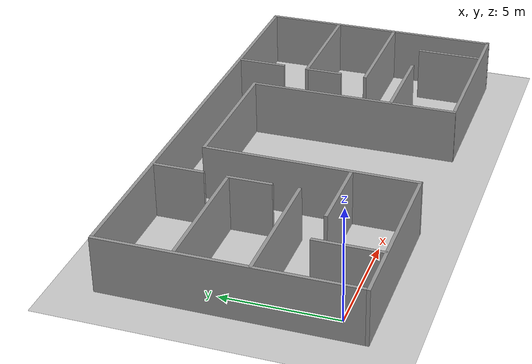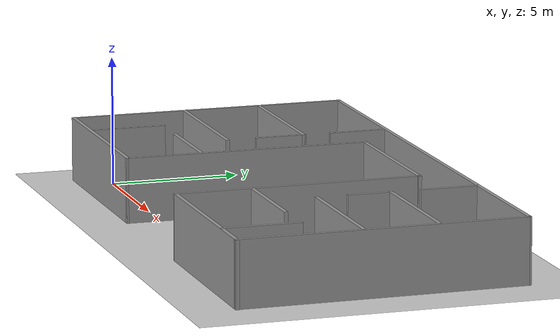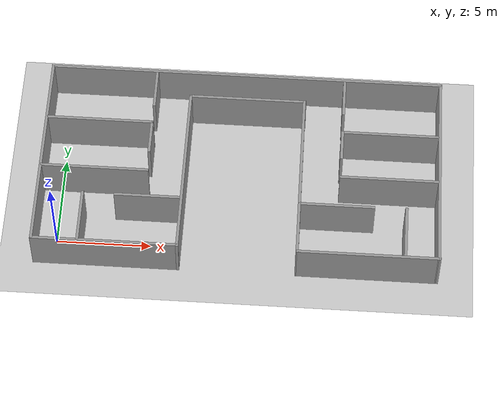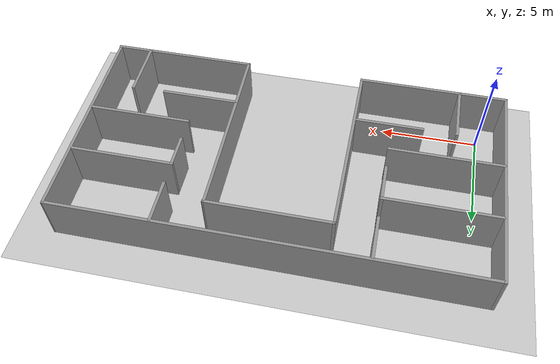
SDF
<sdf version="1.7">
 <world name="default">
  <light name="sun" type="directional">
   <pose>0 0 10 0 -0 0</pose>
   <diffuse>0.8 0.8 0.8 1</diffuse>
   <specular>0.2 0.2 0.2 1</specular>
   <attenuation>
    <range>1000</range>
    <constant>0.9</constant>
    <linear>0.01</linear>
    <quadratic>0.001</quadratic>
   </attenuation>
   <direction>-0.5 0.1 -0.9</direction>
   <spot><inner_angle>0</inner_angle><outer_angle>0</outer_angle><falloff>0</falloff></spot>
  </light>
  <model name="ground_plane">
   <static>1</static>
   <link name="link">
    <collision name="collision">
     <geometry><plane><normal>0 0 1</normal><size>100 100</size></plane></geometry>
     <surface><friction><ode><mu>100</mu><mu2>50</mu2></ode></friction></surface>
    </collision>
    <visual name="visual">
     <cast_shadows>0</cast_shadows>
     <geometry><plane><normal>0 0 1</normal><size>100 100</size></plane></geometry>
     <material>
      <script><uri>file://media/materials/scripts/gazebo.material</uri><name>Gazebo/Grey</name></script>
     </material>
    </visual>
   </link>
  </model>
  <gravity>0 0 -9.8</gravity>
  <magnetic_field>6e-06 2.3e-05 -4.2e-05</magnetic_field>
  <atmosphere type="adiabatic"/>
  <physics type="ode">
   <max_step_size>0.001</max_step_size>
   <real_time_factor>1</real_time_factor>
   <real_time_update_rate>1000</real_time_update_rate>
  </physics>
  <scene><ambient>0.4 0.4 0.4 1</ambient><background>0.7 0.7 0.7 1</background><shadows>1</shadows></scene>
  <spherical_coordinates>
   <surface_model>EARTH_WGS84</surface_model>
   <latitude_deg>0</latitude_deg>
   <longitude_deg>0</longitude_deg>
   <elevation>0</elevation>
   <heading_deg>0</heading_deg>
  </spherical_coordinates>
  <model name="indoors_isolated1">
   <pose>9.53926 4.18182 0 0 -0 0</pose>
   <link name="Wall_0">
    <collision name="Wall_0_Collision">
     <geometry><box><size>7.75 0.15 2.5</size></box></geometry>
     <pose>0 0 1.25 0 -0 0</pose>
    </collision>
    <visual name="Wall_0_Visual">
     <pose>0 0 1.25 0 -0 0</pose>
     <geometry><box><size>7.75 0.15 2.5</size></box></geometry>
     <material>
      <script><uri>file://media/materials/scripts/gazebo.material</uri><name>Gazebo/Grey</name></script>
      <ambient>1 1 1 1</ambient>
     </material>
     <meta><layer>0</layer></meta>
    </visual>
    <pose>-6.8085 -5.43645 0 0 -0 0</pose>
   </link>
   <link name="Wall_10">
    <collision name="Wall_10_Collision">
     <geometry><box><size>9.47697 0.15 2.5</size></box></geometry>
     <pose>0 0 1.25 0 -0 0</pose>
    </collision>
    <visual name="Wall_10_Visual">
     <pose>0 0 1.25 0 -0 0</pose>
     <geometry><box><size>9.47697 0.15 2.5</size></box></geometry>
     <material>
      <script><uri>file://media/materials/scripts/gazebo.material</uri><name>Gazebo/Grey</name></script>
      <ambient>1 1 1 1</ambient>
     </material>
     <meta><layer>0</layer></meta>
    </visual>
    <pose>3.20044 -0.749881 0 0 -0 -1.56405</pose>
   </link>
   <link name="Wall_11">
    <collision name="Wall_11_Collision">
     <geometry><box><size>7.5 0.15 2.5</size></box></geometry>
     <pose>0 0 1.25 0 -0 0</pose>
    </collision>
    <visual name="Wall_11_Visual">
     <pose>0 0 1.25 0 -0 0</pose>
     <geometry><box><size>7.5 0.15 2.5</size></box></geometry>
     <material>
      <script><uri>file://media/materials/scripts/gazebo.material</uri><name>Gazebo/Grey</name></script>
      <ambient>1 1 1 1</ambient>
     </material>
     <meta><layer>0</layer></meta>
    </visual>
    <pose>6.9335 -5.41332 0 0 -0 0</pose>
   </link>
   <link name="Wall_12">
    <collision name="Wall_12_Collision">
     <geometry><box><size>11.0001 0.15 2.5</size></box></geometry>
     <pose>0 0 1.25 0 -0 0</pose>
    </collision>
    <visual name="Wall_12_Visual">
     <pose>0 0 1.25 0 -0 0</pose>
     <geometry><box><size>11.0001 0.15 2.5</size></box></geometry>
     <material>
      <script><uri>file://media/materials/scripts/gazebo.material</uri><name>Gazebo/Grey</name></script>
      <ambient>1 1 1 1</ambient>
     </material>
     <meta><layer>0</layer></meta>
    </visual>
    <pose>10.5367 0.011684 0 0 -0 1.57913</pose>
   </link>
   <link name="Wall_14">
    <collision name="Wall_14_Collision">
     <geometry><box><size>3 0.15 2.5</size></box></geometry>
     <pose>0 0 1.25 0 -0 0</pose>
    </collision>
    <visual name="Wall_14_Visual">
     <pose>0 0 1.25 0 -0 0</pose>
     <geometry><box><size>3 0.15 2.5</size></box></geometry>
     <material>
      <script><uri>file://media/materials/scripts/gazebo.material</uri><name>Gazebo/Grey</name></script>
      <ambient>1 1 1 1</ambient>
     </material>
     <meta><layer>0</layer></meta>
    </visual>
    <pose>-8.20464 -3.96879 0 0 -0 1.5708</pose>
   </link>
   <link name="Wall_16">
    <collision name="Wall_16_Collision">
     <geometry><box><size>3.5 0.15 2.5</size></box></geometry>
     <pose>0 0 1.25 0 -0 0</pose>
    </collision>
    <visual name="Wall_16_Visual">
     <pose>0 0 1.25 0 -0 0</pose>
     <geometry><box><size>3.5 0.15 2.5</size></box></geometry>
     <material>
      <script><uri>file://media/materials/scripts/gazebo.material</uri><name>Gazebo/Grey</name></script>
      <ambient>1 1 1 1</ambient>
     </material>
     <meta><layer>0</layer></meta>
    </visual>
    <pose>-4.80062 -2.54757 0 0 -0 0</pose>
   </link>
   <link name="Wall_18">
    <collision name="Wall_18_Collision">
     <geometry><box><size>5.75 0.15 2.5</size></box></geometry>
     <pose>0 0 1.25 0 -0 0</pose>
    </collision>
    <visual name="Wall_18_Visual">
     <pose>0 0 1.25 0 -0 0</pose>
     <geometry><box><size>5.75 0.15 2.5</size></box></geometry>
     <material>
      <script><uri>file://media/materials/scripts/gazebo.material</uri><name>Gazebo/Grey</name></script>
      <ambient>1 1 1 1</ambient>
     </material>
     <meta><layer>0</layer></meta>
    </visual>
    <pose>-7.74545 -0.951558 0 0 -0 0</pose>
   </link>
   <link name="Wall_2">
    <collision name="Wall_2_Collision">
     <geometry><box><size>11 0.15 2.5</size></box></geometry>
     <pose>0 0 1.25 0 -0 0</pose>
    </collision>
    <visual name="Wall_2_Visual">
     <pose>0 0 1.25 0 -0 0</pose>
     <geometry><box><size>11 0.15 2.5</size></box></geometry>
     <material>
      <script><uri>file://media/materials/scripts/gazebo.material</uri><name>Gazebo/Grey</name></script>
      <ambient>1 1 1 1</ambient>
     </material>
     <meta><layer>0</layer></meta>
    </visual>
    <pose>-10.6085 0.011684 0 0 -0 1.5708</pose>
   </link>
   <link name="Wall_20">
    <collision name="Wall_20_Collision">
     <geometry><box><size>2 0.15 2.5</size></box></geometry>
     <pose>0 0 1.25 0 -0 0</pose>
    </collision>
    <visual name="Wall_20_Visual">
     <pose>0 0 1.25 0 -0 0</pose>
     <geometry><box><size>2 0.15 2.5</size></box></geometry>
     <material>
      <script><uri>file://media/materials/scripts/gazebo.material</uri><name>Gazebo/Grey</name></script>
      <ambient>1 1 1 1</ambient>
     </material>
     <meta><layer>0</layer></meta>
    </visual>
    <pose>-4.93281 1.18105 0 0 -0 1.5708</pose>
   </link>
   <link name="Wall_21">
    <collision name="Wall_21_Collision">
     <geometry><box><size>5.75 0.15 2.5</size></box></geometry>
     <pose>0 0 1.25 0 -0 0</pose>
    </collision>
    <visual name="Wall_21_Visual">
     <pose>0 0 1.25 0 -0 0</pose>
     <geometry><box><size>5.75 0.15 2.5</size></box></geometry>
     <material>
      <script><uri>file://media/materials/scripts/gazebo.material</uri><name>Gazebo/Grey</name></script>
      <ambient>1 1 1 1</ambient>
     </material>
     <meta><layer>0</layer></meta>
    </visual>
    <pose>-7.73281 2.10605 0 0 -0 3.14159</pose>
   </link>
   <link name="Wall_23">
    <collision name="Wall_23_Collision">
     <geometry><box><size>2.25 0.15 2.5</size></box></geometry>
     <pose>0 0 1.25 0 -0 0</pose>
    </collision>
    <visual name="Wall_23_Visual">
     <pose>0 0 1.25 0 -0 0</pose>
     <geometry><box><size>2.25 0.15 2.5</size></box></geometry>
     <material>
      <script><uri>file://media/materials/scripts/gazebo.material</uri><name>Gazebo/Grey</name></script>
      <ambient>1 1 1 1</ambient>
     </material>
     <meta><layer>0</layer></meta>
    </visual>
    <pose>-4.90621 4.27467 0 0 -0 1.5708</pose>
   </link>
   <link name="Wall_25">
    <collision name="Wall_25_Collision">
     <geometry><box><size>2.25 0.15 2.5</size></box></geometry>
     <pose>0 0 1.25 0 -0 0</pose>
    </collision>
    <visual name="Wall_25_Visual">
     <pose>0 0 1.25 0 -0 0</pose>
     <geometry><box><size>2.25 0.15 2.5</size></box></geometry>
     <material>
      <script><uri>file://media/materials/scripts/gazebo.material</uri><name>Gazebo/Grey</name></script>
      <ambient>1 1 1 1</ambient>
     </material>
     <meta><layer>0</layer></meta>
    </visual>
    <pose>5.30826 4.32929 0 0 -0 -1.5708</pose>
   </link>
   <link name="Wall_27">
    <collision name="Wall_27_Collision">
     <geometry><box><size>5.25 0.15 2.5</size></box></geometry>
     <pose>0 0 1.25 0 -0 0</pose>
    </collision>
    <visual name="Wall_27_Visual">
     <pose>0 0 1.25 0 -0 0</pose>
     <geometry><box><size>5.25 0.15 2.5</size></box></geometry>
     <material>
      <script><uri>file://media/materials/scripts/gazebo.material</uri><name>Gazebo/Grey</name></script>
      <ambient>1 1 1 1</ambient>
     </material>
     <meta><layer>0</layer></meta>
    </visual>
    <pose>7.85826 2.08087 0 0 -0 0</pose>
   </link>
   <link name="Wall_29">
    <collision name="Wall_29_Collision">
     <geometry><box><size>1.75 0.15 2.5</size></box></geometry>
     <pose>0 0 1.25 0 -0 0</pose>
    </collision>
    <visual name="Wall_29_Visual">
     <pose>0 0 1.25 0 -0 0</pose>
     <geometry><box><size>1.75 0.15 2.5</size></box></geometry>
     <material>
      <script><uri>file://media/materials/scripts/gazebo.material</uri><name>Gazebo/Grey</name></script>
      <ambient>1 1 1 1</ambient>
     </material>
     <meta><layer>0</layer></meta>
    </visual>
    <pose>5.30826 1.28086 0 0 -0 -1.5708</pose>
   </link>
   <link name="Wall_31">
    <collision name="Wall_31_Collision">
     <geometry><box><size>5.25 0.15 2.5</size></box></geometry>
     <pose>0 0 1.25 0 -0 0</pose>
    </collision>
    <visual name="Wall_31_Visual">
     <pose>0 0 1.25 0 -0 0</pose>
     <geometry><box><size>5.25 0.15 2.5</size></box></geometry>
     <material>
      <script><uri>file://media/materials/scripts/gazebo.material</uri><name>Gazebo/Grey</name></script>
      <ambient>1 1 1 1</ambient>
     </material>
     <meta><layer>0</layer></meta>
    </visual>
    <pose>7.88486 -0.738756 0 0 -0 0</pose>
   </link>
   <link name="Wall_33">
    <collision name="Wall_33_Collision">
     <geometry><box><size>4 0.15 2.5</size></box></geometry>
     <pose>0 0 1.25 0 -0 0</pose>
    </collision>
    <visual name="Wall_33_Visual">
     <pose>0 0 1.25 0 -0 0</pose>
     <geometry><box><size>4 0.15 2.5</size></box></geometry>
     <material>
      <script><uri>file://media/materials/scripts/gazebo.material</uri><name>Gazebo/Grey</name></script>
      <ambient>1 1 1 1</ambient>
     </material>
     <meta><layer>0</layer></meta>
    </visual>
    <pose>5.18505 -2.52097 0 0 -0 0</pose>
   </link>
   <link name="Wall_35">
    <collision name="Wall_35_Collision">
     <geometry><box><size>3 0.15 2.5</size></box></geometry>
     <pose>0 0 1.25 0 -0 0</pose>
    </collision>
    <visual name="Wall_35_Visual">
     <pose>0 0 1.25 0 -0 0</pose>
     <geometry><box><size>3 0.15 2.5</size></box></geometry>
     <material>
      <script><uri>file://media/materials/scripts/gazebo.material</uri><name>Gazebo/Grey</name></script>
      <ambient>1 1 1 1</ambient>
     </material>
     <meta><layer>0</layer></meta>
    </visual>
    <pose>8.84609 -3.94597 0 0 -0 -1.5708</pose>
   </link>
   <link name="Wall_4">
    <collision name="Wall_4_Collision">
     <geometry><box><size>9.50098 0.15 2.5</size></box></geometry>
     <pose>0 0 1.25 0 -0 0</pose>
    </collision>
    <visual name="Wall_4_Visual">
     <pose>0 0 1.25 0 -0 0</pose>
     <geometry><box><size>9.50098 0.15 2.5</size></box></geometry>
     <material>
      <script><uri>file://media/materials/scripts/gazebo.material</uri><name>Gazebo/Grey</name></script>
      <ambient>1 1 1 1</ambient>
     </material>
     <meta><layer>0</layer></meta>
    </visual>
    <pose>-2.99106 -0.761447 0 0 -0 1.56706</pose>
   </link>
   <link name="Wall_6">
    <collision name="Wall_6_Collision">
     <geometry><box><size>21.25 0.15 2.5</size></box></geometry>
     <pose>0 0 1.25 0 -0 0</pose>
    </collision>
    <visual name="Wall_6_Visual">
     <pose>0 0 1.25 0 -0 0</pose>
     <geometry><box><size>21.25 0.15 2.5</size></box></geometry>
     <material>
      <script><uri>file://media/materials/scripts/gazebo.material</uri><name>Gazebo/Grey</name></script>
      <ambient>1 1 1 1</ambient>
     </material>
     <meta><layer>0</layer></meta>
    </visual>
    <pose>-0.058499 5.43668 0 0 -0 0</pose>
   </link>
   <link name="Wall_9">
    <collision name="Wall_9_Collision">
     <geometry><box><size>6.2926 0.15 2.5</size></box></geometry>
     <pose>0 0 1.25 0 -0 0</pose>
    </collision>
    <visual name="Wall_9_Visual">
     <pose>0 0 1.25 0 -0 0</pose>
     <geometry><box><size>6.2926 0.15 2.5</size></box></geometry>
     <material>
      <script><uri>file://media/materials/scripts/gazebo.material</uri><name>Gazebo/Grey</name></script>
      <ambient>1 1 1 1</ambient>
     </material>
     <meta><layer>0</layer></meta>
    </visual>
    <pose>0.124288 3.91355 0 0 -0 0</pose>
   </link>
   <static>1</static>
  </model>
 </world>
</sdf>
